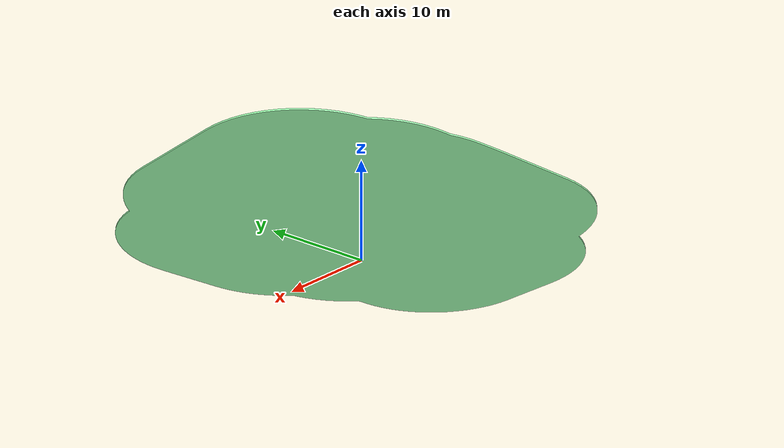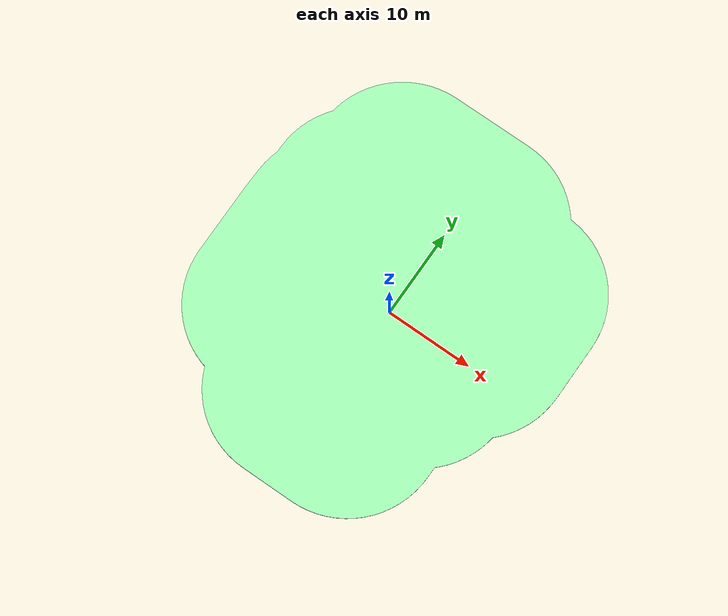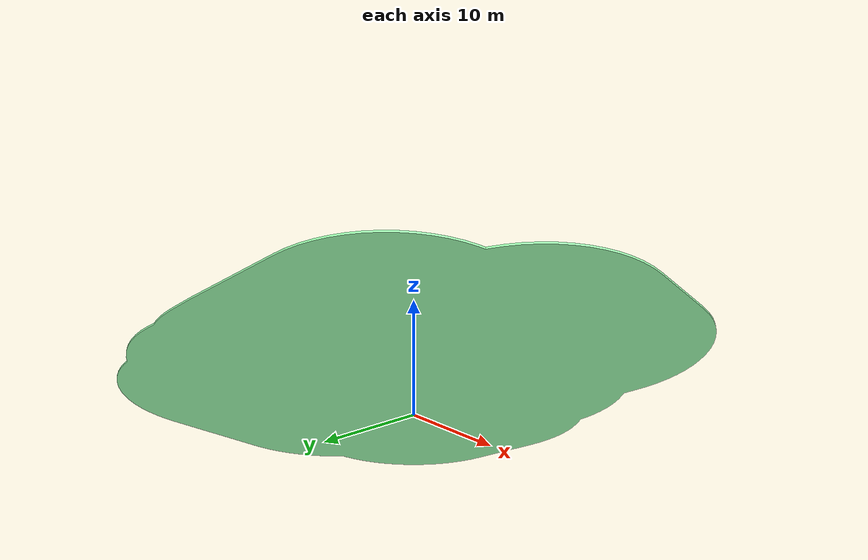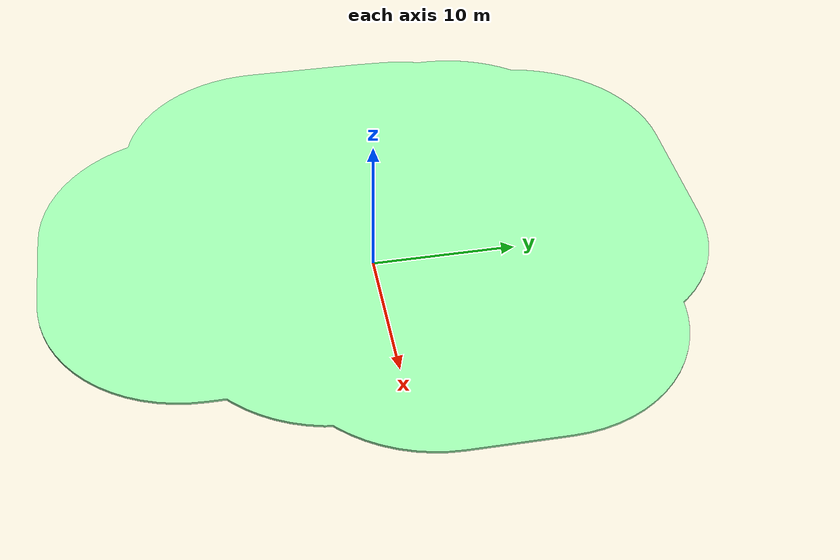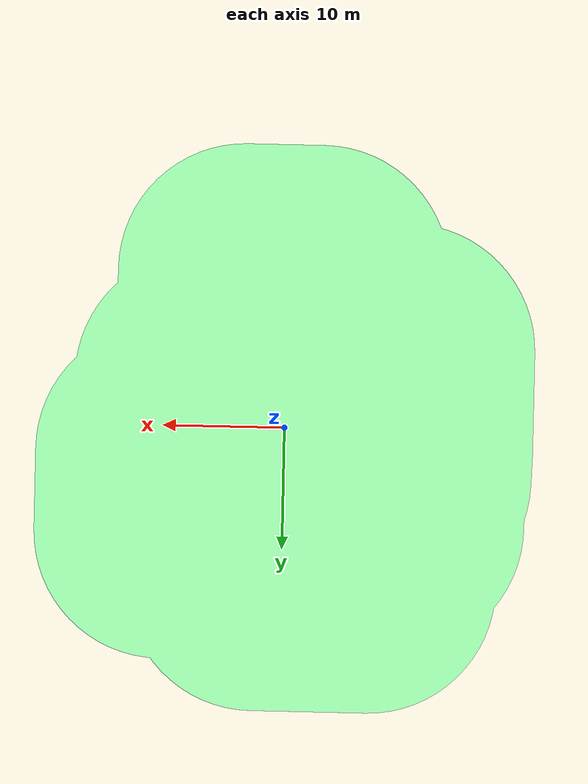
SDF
<?xml version="1.0" ?>
<sdf version="1.6">
  <model name="ceiling_11">
    <pose frame="">0 0 3 0 -0 0</pose>
    <static>1</static>
    <self_collide>0</self_collide>
    <allow_auto_disable>0</allow_auto_disable>
    <link name="mesh">
      <kinematic>0</kinematic>
      <gravity>1</gravity>
      <self_collide>0</self_collide>
      <collision name="collision">
        <geometry>
          <mesh>
            <uri>model://ceiling_11/meshes/lrNFTFQArN.stl</uri>
            <scale>1 1 1</scale>
          </mesh>
        </geometry>
        <pose frame="">3.48871 2.37256 -0.075 0 -0 0</pose>
        <max_contacts>20</max_contacts>
      </collision>
      <visual name="visual">
        <geometry>
          <mesh>
            <uri>model://ceiling_11/meshes/lxhdcesXbC.stl</uri>
            <scale>1 1 1</scale>
          </mesh>
        </geometry>
        <material>
          <ambient>0.623529 0.996078 0.690196 1</ambient>
          <diffuse>0.6235294117647059 0.996078431372549 0.6901960784313725 1</diffuse>
        </material>
        <pose frame="">3.48871 2.37256 -0.075 0 -0 0</pose>
        <cast_shadows>1</cast_shadows>
        <transparency>0.0</transparency>
      </visual>
      <pose frame="">0 0 0 0 -0 0</pose>
    </link>
  </model>
</sdf>
